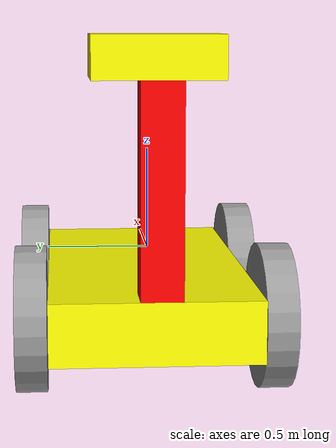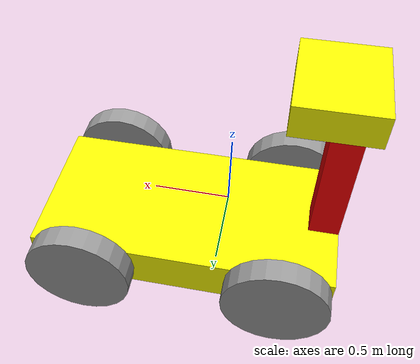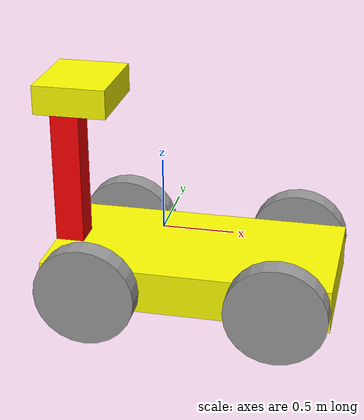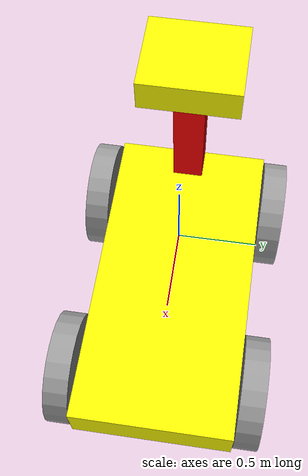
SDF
<?xml version='1.0'?>
<sdf version='1.6'>
  <model name='nonamefinal'>
    <link name='link_0'>
      <inertial>
        <mass>1</mass>
        <inertia>
          <ixx>0.166667</ixx>
          <ixy>0</ixy>
          <ixz>0</ixz>
          <iyy>0.166667</iyy>
          <iyz>0</iyz>
          <izz>0.166667</izz>
        </inertia>
        <pose frame=''>0 0 0 0 -0 0</pose>
      </inertial>
      <pose frame=''>0.242858 0.002856 -0.271429 0 -0 0</pose>
      <gravity>1</gravity>
      <self_collide>0</self_collide>
      <kinematic>0</kinematic>
      <enable_wind>0</enable_wind>
      <visual name='visual'>
        <pose frame=''>0 0 0 0 -0 0</pose>
        <geometry>
          <box>
            <size>2 1 0.3</size>
          </box>
        </geometry>
        <material>
          <lighting>1</lighting>
          <script>
            <uri>file://media/materials/scripts/gazebo.material</uri>
            <name>Gazebo/Grey</name>
          </script>
          <shader type='vertex'>
            <normal_map>__default__</normal_map>
          </shader>
          <ambient>1 1 0 1</ambient>
          <diffuse>1 1 0 1</diffuse>
          <specular>0.01 0.01 0.01 1</specular>
          <emissive>0 0 0 1</emissive>
        </material>
        <transparency>0</transparency>
        <cast_shadows>1</cast_shadows>
      </visual>
      <collision name='collision'>
        <laser_retro>0</laser_retro>
        <max_contacts>10</max_contacts>
        <pose frame=''>0 0 0 0 -0 0</pose>
        <geometry>
          <box>
            <size>2 1 0.3</size>
          </box>
        </geometry>
        <surface>
          <friction>
            <ode>
              <mu>1</mu>
              <mu2>1</mu2>
              <fdir1>0 0 0</fdir1>
              <slip1>0</slip1>
              <slip2>0</slip2>
            </ode>
            <torsional>
              <coefficient>1</coefficient>
              <patch_radius>0</patch_radius>
              <surface_radius>0</surface_radius>
              <use_patch_radius>1</use_patch_radius>
              <ode>
                <slip>0</slip>
              </ode>
            </torsional>
          </friction>
          <bounce>
            <restitution_coefficient>0</restitution_coefficient>
            <threshold>1e+06</threshold>
          </bounce>
          <contact>
            <collide_without_contact>0</collide_without_contact>
            <collide_without_contact_bitmask>1</collide_without_contact_bitmask>
            <collide_bitmask>1</collide_bitmask>
            <ode>
              <soft_cfm>0</soft_cfm>
              <soft_erp>0.2</soft_erp>
              <kp>1e+13</kp>
              <kd>1</kd>
              <max_vel>0.01</max_vel>
              <min_depth>0</min_depth>
            </ode>
            <bullet>
              <split_impulse>1</split_impulse>
              <split_impulse_penetration_threshold>-0.01</split_impulse_penetration_threshold>
              <soft_cfm>0</soft_cfm>
              <soft_erp>0.2</soft_erp>
              <kp>1e+13</kp>
              <kd>1</kd>
            </bullet>
          </contact>
        </surface>
      </collision>
    </link>
    <link name='link_1'>
      <inertial>
        <mass>1</mass>
        <inertia>
          <ixx>0.145833</ixx>
          <ixy>0</ixy>
          <ixz>0</ixz>
          <iyy>0.145833</iyy>
          <iyz>0</iyz>
          <izz>0.125</izz>
        </inertia>
        <pose frame=''>0 0 0 0 -0 0</pose>
      </inertial>
      <pose frame=''>0.892854 0.58139 -0.271429 0 -0 0</pose>
      <gravity>1</gravity>
      <self_collide>0</self_collide>
      <kinematic>0</kinematic>
      <enable_wind>0</enable_wind>
      <visual name='visual'>
        <pose frame=''>0 0 0 1.5707 -0 0</pose>
        <geometry>
          <cylinder>
            <radius>0.35</radius>
            <length>0.15</length>
          </cylinder>
        </geometry>
        <material>
          <lighting>1</lighting>
          <script>
            <uri>file://media/materials/scripts/gazebo.material</uri>
            <name>Gazebo/Grey</name>
          </script>
          <shader type='vertex'>
            <normal_map>__default__</normal_map>
          </shader>
          <ambient>0 0 0 1</ambient>
          <diffuse>0.7 0.7 0.7 1</diffuse>
          <specular>0.01 0.01 0.01 1</specular>
          <emissive>0 0 0 1</emissive>
        </material>
        <transparency>0</transparency>
        <cast_shadows>1</cast_shadows>
      </visual>
      <collision name='collision'>
        <laser_retro>0</laser_retro>
        <max_contacts>10</max_contacts>
        <pose frame=''>0 0 0 1.5607 -0 0</pose>
        <geometry>
          <cylinder>
            <radius>0.35</radius>
            <length>0.15</length>
          </cylinder>
        </geometry>
        <surface>
          <friction>
            <ode>
              <mu>1</mu>
              <mu2>1</mu2>
              <fdir1>0 0 0</fdir1>
              <slip1>0</slip1>
              <slip2>0</slip2>
            </ode>
            <torsional>
              <coefficient>1</coefficient>
              <patch_radius>0</patch_radius>
              <surface_radius>0</surface_radius>
              <use_patch_radius>1</use_patch_radius>
              <ode>
                <slip>0</slip>
              </ode>
            </torsional>
          </friction>
          <bounce>
            <restitution_coefficient>0</restitution_coefficient>
            <threshold>1e+06</threshold>
          </bounce>
          <contact>
            <collide_without_contact>0</collide_without_contact>
            <collide_without_contact_bitmask>1</collide_without_contact_bitmask>
            <collide_bitmask>1</collide_bitmask>
            <ode>
              <soft_cfm>0</soft_cfm>
              <soft_erp>0.2</soft_erp>
              <kp>1e+13</kp>
              <kd>1</kd>
              <max_vel>0.01</max_vel>
              <min_depth>0</min_depth>
            </ode>
            <bullet>
              <split_impulse>1</split_impulse>
              <split_impulse_penetration_threshold>-0.01</split_impulse_penetration_threshold>
              <soft_cfm>0</soft_cfm>
              <soft_erp>0.2</soft_erp>
              <kp>1e+13</kp>
              <kd>1</kd>
            </bullet>
          </contact>
        </surface>
      </collision>
    </link>
    <link name='link_1_clone'>
      <inertial>
        <mass>1</mass>
        <inertia>
          <ixx>0.145833</ixx>
          <ixy>0</ixy>
          <ixz>0</ixz>
          <iyy>0.145833</iyy>
          <iyz>0</iyz>
          <izz>0.125</izz>
        </inertia>
        <pose frame=''>0 0 0 0 -0 0</pose>
      </inertial>
      <pose frame=''>-0.407142 -0.575673 -0.271429 0 -0 0</pose>
      <gravity>1</gravity>
      <self_collide>0</self_collide>
      <kinematic>0</kinematic>
      <enable_wind>0</enable_wind>
      <visual name='visual'>
        <pose frame=''>0 0 0 1.5707 -0 0</pose>
        <geometry>
          <cylinder>
            <radius>0.35</radius>
            <length>0.15</length>
          </cylinder>
        </geometry>
        <material>
          <lighting>1</lighting>
          <script>
            <uri>file://media/materials/scripts/gazebo.material</uri>
            <name>Gazebo/Grey</name>
          </script>
          <shader type='vertex'>
            <normal_map>__default__</normal_map>
          </shader>
          <ambient>0 0 0 1</ambient>
          <diffuse>0.7 0.7 0.7 1</diffuse>
          <specular>0.01 0.01 0.01 1</specular>
          <emissive>0 0 0 1</emissive>
        </material>
        <transparency>0</transparency>
        <cast_shadows>1</cast_shadows>
      </visual>
      <collision name='collision'>
        <laser_retro>0</laser_retro>
        <max_contacts>10</max_contacts>
        <pose frame=''>0 0 0 1.5607 -0 0</pose>
        <geometry>
          <cylinder>
            <radius>0.35</radius>
            <length>0.15</length>
          </cylinder>
        </geometry>
        <surface>
          <friction>
            <ode>
              <mu>1</mu>
              <mu2>1</mu2>
              <fdir1>0 0 0</fdir1>
              <slip1>0</slip1>
              <slip2>0</slip2>
            </ode>
            <torsional>
              <coefficient>1</coefficient>
              <patch_radius>0</patch_radius>
              <surface_radius>0</surface_radius>
              <use_patch_radius>1</use_patch_radius>
              <ode>
                <slip>0</slip>
              </ode>
            </torsional>
          </friction>
          <bounce>
            <restitution_coefficient>0</restitution_coefficient>
            <threshold>1e+06</threshold>
          </bounce>
          <contact>
            <collide_without_contact>0</collide_without_contact>
            <collide_without_contact_bitmask>1</collide_without_contact_bitmask>
            <collide_bitmask>1</collide_bitmask>
            <ode>
              <soft_cfm>0</soft_cfm>
              <soft_erp>0.2</soft_erp>
              <kp>1e+13</kp>
              <kd>1</kd>
              <max_vel>0.01</max_vel>
              <min_depth>0</min_depth>
            </ode>
            <bullet>
              <split_impulse>1</split_impulse>
              <split_impulse_penetration_threshold>-0.01</split_impulse_penetration_threshold>
              <soft_cfm>0</soft_cfm>
              <soft_erp>0.2</soft_erp>
              <kp>1e+13</kp>
              <kd>1</kd>
            </bullet>
          </contact>
        </surface>
      </collision>
    </link>
    <link name='link_1_clone_0'>
      <inertial>
        <mass>1</mass>
        <inertia>
          <ixx>0.145833</ixx>
          <ixy>0</ixy>
          <ixz>0</ixz>
          <iyy>0.145833</iyy>
          <iyz>0</iyz>
          <izz>0.125</izz>
        </inertia>
        <pose frame=''>0 0 0 0 -0 0</pose>
      </inertial>
      <pose frame=''>-0.407142 0.581387 -0.271429 0 -0 0</pose>
      <gravity>1</gravity>
      <self_collide>0</self_collide>
      <kinematic>0</kinematic>
      <enable_wind>0</enable_wind>
      <visual name='visual'>
        <pose frame=''>0 0 0 1.5707 -0 0</pose>
        <geometry>
          <cylinder>
            <radius>0.35</radius>
            <length>0.15</length>
          </cylinder>
        </geometry>
        <material>
          <lighting>1</lighting>
          <script>
            <uri>file://media/materials/scripts/gazebo.material</uri>
            <name>Gazebo/Grey</name>
          </script>
          <shader type='vertex'>
            <normal_map>__default__</normal_map>
          </shader>
          <ambient>0 0 0 1</ambient>
          <diffuse>0.7 0.7 0.7 1</diffuse>
          <specular>0.01 0.01 0.01 1</specular>
          <emissive>0 0 0 1</emissive>
        </material>
        <transparency>0</transparency>
        <cast_shadows>1</cast_shadows>
      </visual>
      <collision name='collision'>
        <laser_retro>0</laser_retro>
        <max_contacts>10</max_contacts>
        <pose frame=''>0 0 0 1.5607 -0 0</pose>
        <geometry>
          <cylinder>
            <radius>0.35</radius>
            <length>0.15</length>
          </cylinder>
        </geometry>
        <surface>
          <friction>
            <ode>
              <mu>1</mu>
              <mu2>1</mu2>
              <fdir1>0 0 0</fdir1>
              <slip1>0</slip1>
              <slip2>0</slip2>
            </ode>
            <torsional>
              <coefficient>1</coefficient>
              <patch_radius>0</patch_radius>
              <surface_radius>0</surface_radius>
              <use_patch_radius>1</use_patch_radius>
              <ode>
                <slip>0</slip>
              </ode>
            </torsional>
          </friction>
          <bounce>
            <restitution_coefficient>0</restitution_coefficient>
            <threshold>1e+06</threshold>
          </bounce>
          <contact>
            <collide_without_contact>0</collide_without_contact>
            <collide_without_contact_bitmask>1</collide_without_contact_bitmask>
            <collide_bitmask>1</collide_bitmask>
            <ode>
              <soft_cfm>0</soft_cfm>
              <soft_erp>0.2</soft_erp>
              <kp>1e+13</kp>
              <kd>1</kd>
              <max_vel>0.01</max_vel>
              <min_depth>0</min_depth>
            </ode>
            <bullet>
              <split_impulse>1</split_impulse>
              <split_impulse_penetration_threshold>-0.01</split_impulse_penetration_threshold>
              <soft_cfm>0</soft_cfm>
              <soft_erp>0.2</soft_erp>
              <kp>1e+13</kp>
              <kd>1</kd>
            </bullet>
          </contact>
        </surface>
      </collision>
    </link>
    <link name='link_1_clone_1'>
      <inertial>
        <mass>1</mass>
        <inertia>
          <ixx>0.145833</ixx>
          <ixy>0</ixy>
          <ixz>0</ixz>
          <iyy>0.145833</iyy>
          <iyz>0</iyz>
          <izz>0.125</izz>
        </inertia>
        <pose frame=''>0 0 0 0 -0 0</pose>
      </inertial>
      <pose frame=''>0.892854 -0.575675 -0.271429 0 -0 0</pose>
      <gravity>1</gravity>
      <self_collide>0</self_collide>
      <kinematic>0</kinematic>
      <enable_wind>0</enable_wind>
      <visual name='visual'>
        <pose frame=''>0 0 0 1.5707 -0 0</pose>
        <geometry>
          <cylinder>
            <radius>0.35</radius>
            <length>0.15</length>
          </cylinder>
        </geometry>
        <material>
          <lighting>1</lighting>
          <script>
            <uri>file://media/materials/scripts/gazebo.material</uri>
            <name>Gazebo/Grey</name>
          </script>
          <shader type='vertex'>
            <normal_map>__default__</normal_map>
          </shader>
          <ambient>0 0 0 1</ambient>
          <diffuse>0.7 0.7 0.7 1</diffuse>
          <specular>0.01 0.01 0.01 1</specular>
          <emissive>0 0 0 1</emissive>
        </material>
        <transparency>0</transparency>
        <cast_shadows>1</cast_shadows>
      </visual>
      <collision name='collision'>
        <laser_retro>0</laser_retro>
        <max_contacts>10</max_contacts>
        <pose frame=''>0 0 0 1.5607 -0 0</pose>
        <geometry>
          <cylinder>
            <radius>0.35</radius>
            <length>0.15</length>
          </cylinder>
        </geometry>
        <surface>
          <friction>
            <ode>
              <mu>1</mu>
              <mu2>1</mu2>
              <fdir1>0 0 0</fdir1>
              <slip1>0</slip1>
              <slip2>0</slip2>
            </ode>
            <torsional>
              <coefficient>1</coefficient>
              <patch_radius>0</patch_radius>
              <surface_radius>0</surface_radius>
              <use_patch_radius>1</use_patch_radius>
              <ode>
                <slip>0</slip>
              </ode>
            </torsional>
          </friction>
          <bounce>
            <restitution_coefficient>0</restitution_coefficient>
            <threshold>1e+06</threshold>
          </bounce>
          <contact>
            <collide_without_contact>0</collide_without_contact>
            <collide_without_contact_bitmask>1</collide_without_contact_bitmask>
            <collide_bitmask>1</collide_bitmask>
            <ode>
              <soft_cfm>0</soft_cfm>
              <soft_erp>0.2</soft_erp>
              <kp>1e+13</kp>
              <kd>1</kd>
              <max_vel>0.01</max_vel>
              <min_depth>0</min_depth>
            </ode>
            <bullet>
              <split_impulse>1</split_impulse>
              <split_impulse_penetration_threshold>-0.01</split_impulse_penetration_threshold>
              <soft_cfm>0</soft_cfm>
              <soft_erp>0.2</soft_erp>
              <kp>1e+13</kp>
              <kd>1</kd>
            </bullet>
          </contact>
        </surface>
      </collision>
    </link>
    <link name='link_2'>
      <inertial>
        <mass>1</mass>
        <inertia>
          <ixx>0.166667</ixx>
          <ixy>0</ixy>
          <ixz>0</ixz>
          <iyy>0.166667</iyy>
          <iyz>0</iyz>
          <izz>0.166667</izz>
        </inertia>
        <pose frame=''>0 0 0 0 -0 0</pose>
      </inertial>
      <pose frame=''>-0.657142 -0.017144 0.378571 0 -0 0</pose>
      <gravity>1</gravity>
      <self_collide>0</self_collide>
      <kinematic>0</kinematic>
      <enable_wind>0</enable_wind>
      <visual name='visual'>
        <pose frame=''>0 0 0 0 -0 0</pose>
        <geometry>
          <box>
            <size>0.2 0.2 1</size>
          </box>
        </geometry>
        <material>
          <lighting>1</lighting>
          <script>
            <uri>file://media/materials/scripts/gazebo.material</uri>
            <name>Gazebo/Grey</name>
          </script>
          <shader type='vertex'>
            <normal_map>__default__</normal_map>
          </shader>
          <ambient>1 0 0 1</ambient>
          <diffuse>0.7 0.7 0.7 1</diffuse>
          <specular>0.01 0.01 0.01 1</specular>
          <emissive>0 0 0 1</emissive>
        </material>
        <transparency>0</transparency>
        <cast_shadows>1</cast_shadows>
      </visual>
      <collision name='collision'>
        <laser_retro>0</laser_retro>
        <max_contacts>10</max_contacts>
        <pose frame=''>0 0 0 0 -0 0</pose>
        <geometry>
          <box>
            <size>0.2 0.2 1</size>
          </box>
        </geometry>
        <surface>
          <friction>
            <ode>
              <mu>1</mu>
              <mu2>1</mu2>
              <fdir1>0 0 0</fdir1>
              <slip1>0</slip1>
              <slip2>0</slip2>
            </ode>
            <torsional>
              <coefficient>1</coefficient>
              <patch_radius>0</patch_radius>
              <surface_radius>0</surface_radius>
              <use_patch_radius>1</use_patch_radius>
              <ode>
                <slip>0</slip>
              </ode>
            </torsional>
          </friction>
          <bounce>
            <restitution_coefficient>0</restitution_coefficient>
            <threshold>1e+06</threshold>
          </bounce>
          <contact>
            <collide_without_contact>0</collide_without_contact>
            <collide_without_contact_bitmask>1</collide_without_contact_bitmask>
            <collide_bitmask>1</collide_bitmask>
            <ode>
              <soft_cfm>0</soft_cfm>
              <soft_erp>0.2</soft_erp>
              <kp>1e+13</kp>
              <kd>1</kd>
              <max_vel>0.01</max_vel>
              <min_depth>0</min_depth>
            </ode>
            <bullet>
              <split_impulse>1</split_impulse>
              <split_impulse_penetration_threshold>-0.01</split_impulse_penetration_threshold>
              <soft_cfm>0</soft_cfm>
              <soft_erp>0.2</soft_erp>
              <kp>1e+13</kp>
              <kd>1</kd>
            </bullet>
          </contact>
        </surface>
      </collision>
    </link>
    <link name='link_3'>
      <inertial>
        <mass>1</mass>
        <inertia>
          <ixx>0.166667</ixx>
          <ixy>0</ixy>
          <ixz>0</ixz>
          <iyy>0.166667</iyy>
          <iyz>0</iyz>
          <izz>0.166667</izz>
        </inertia>
        <pose frame=''>0 0 0 0 -0 0</pose>
      </inertial>
      <pose frame=''>-0.557142 0.002855 0.978571 0 -0 0</pose>
      <gravity>1</gravity>
      <self_collide>0</self_collide>
      <kinematic>0</kinematic>
      <enable_wind>0</enable_wind>
      <visual name='visual'>
        <pose frame=''>0 0 0 0 -0 0</pose>
        <geometry>
          <box>
            <size>0.5 0.6 0.2</size>
          </box>
        </geometry>
        <material>
          <lighting>1</lighting>
          <script>
            <uri>file://media/materials/scripts/gazebo.material</uri>
            <name>Gazebo/Grey</name>
          </script>
          <shader type='vertex'>
            <normal_map>__default__</normal_map>
          </shader>
          <ambient>1 1 0 1</ambient>
          <diffuse>0.7 0.7 0.7 1</diffuse>
          <specular>0.01 0.01 0.01 1</specular>
          <emissive>0 0 0 1</emissive>
        </material>
        <transparency>0</transparency>
        <cast_shadows>1</cast_shadows>
      </visual>
      <collision name='collision'>
        <laser_retro>0</laser_retro>
        <max_contacts>10</max_contacts>
        <pose frame=''>0 0 0 0 -0 0</pose>
        <geometry>
          <box>
            <size>0.5 0.6 0.2</size>
          </box>
        </geometry>
        <surface>
          <friction>
            <ode>
              <mu>1</mu>
              <mu2>1</mu2>
              <fdir1>0 0 0</fdir1>
              <slip1>0</slip1>
              <slip2>0</slip2>
            </ode>
            <torsional>
              <coefficient>1</coefficient>
              <patch_radius>0</patch_radius>
              <surface_radius>0</surface_radius>
              <use_patch_radius>1</use_patch_radius>
              <ode>
                <slip>0</slip>
              </ode>
            </torsional>
          </friction>
          <bounce>
            <restitution_coefficient>0</restitution_coefficient>
            <threshold>1e+06</threshold>
          </bounce>
          <contact>
            <collide_without_contact>0</collide_without_contact>
            <collide_without_contact_bitmask>1</collide_without_contact_bitmask>
            <collide_bitmask>1</collide_bitmask>
            <ode>
              <soft_cfm>0</soft_cfm>
              <soft_erp>0.2</soft_erp>
              <kp>1e+13</kp>
              <kd>1</kd>
              <max_vel>0.01</max_vel>
              <min_depth>0</min_depth>
            </ode>
            <bullet>
              <split_impulse>1</split_impulse>
              <split_impulse_penetration_threshold>-0.01</split_impulse_penetration_threshold>
              <soft_cfm>0</soft_cfm>
              <soft_erp>0.2</soft_erp>
              <kp>1e+13</kp>
              <kd>1</kd>
            </bullet>
          </contact>
        </surface>
      </collision>
    </link>
    <joint name='link_0_JOINT_1' type='revolute'>
      <parent>link_0</parent>
      <child>link_1</child>
      <pose frame=''>0 0 0 0 -0 0</pose>
      <axis>
        <xyz>-0 -1 -0</xyz>
        <use_parent_model_frame>0</use_parent_model_frame>
        <limit>
          <lower>-1.79769e+308</lower>
          <upper>1.79769e+308</upper>
          <effort>-1</effort>
          <velocity>-1</velocity>
        </limit>
        <dynamics>
          <spring_reference>0</spring_reference>
          <spring_stiffness>0</spring_stiffness>
          <damping>0</damping>
          <friction>0</friction>
        </dynamics>
      </axis>
      <physics>
        <ode>
          <limit>
            <cfm>0</cfm>
            <erp>0.2</erp>
          </limit>
          <suspension>
            <cfm>0</cfm>
            <erp>0.2</erp>
          </suspension>
        </ode>
      </physics>
    </joint>
    <joint name='link_0_JOINT_2' type='revolute'>
      <parent>link_0</parent>
      <child>link_1_clone</child>
      <pose frame=''>0 0 0 0 -0 0</pose>
      <axis>
        <xyz>-0 -1 -0</xyz>
        <use_parent_model_frame>0</use_parent_model_frame>
        <limit>
          <lower>-1.79769e+308</lower>
          <upper>1.79769e+308</upper>
          <effort>-1</effort>
          <velocity>-1</velocity>
        </limit>
        <dynamics>
          <spring_reference>0</spring_reference>
          <spring_stiffness>0</spring_stiffness>
          <damping>0</damping>
          <friction>0</friction>
        </dynamics>
      </axis>
      <physics>
        <ode>
          <limit>
            <cfm>0</cfm>
            <erp>0.2</erp>
          </limit>
          <suspension>
            <cfm>0</cfm>
            <erp>0.2</erp>
          </suspension>
        </ode>
      </physics>
    </joint>
    <joint name='link_0_JOINT_4' type='revolute'>
      <parent>link_0</parent>
      <child>link_1_clone_0</child>
      <pose frame=''>0 0 0 0 -0 0</pose>
      <axis>
        <xyz>-0 -1 -0</xyz>
        <use_parent_model_frame>0</use_parent_model_frame>
        <limit>
          <lower>-1.79769e+308</lower>
          <upper>1.79769e+308</upper>
          <effort>-1</effort>
          <velocity>-1</velocity>
        </limit>
        <dynamics>
          <spring_reference>0</spring_reference>
          <spring_stiffness>0</spring_stiffness>
          <damping>0</damping>
          <friction>0</friction>
        </dynamics>
      </axis>
      <physics>
        <ode>
          <limit>
            <cfm>0</cfm>
            <erp>0.2</erp>
          </limit>
          <suspension>
            <cfm>0</cfm>
            <erp>0.2</erp>
          </suspension>
        </ode>
      </physics>
    </joint>
    <joint name='link_0_JOINT_5' type='revolute'>
      <parent>link_0</parent>
      <child>link_1_clone_1</child>
      <pose frame=''>0 0 0 0 -0 0</pose>
      <axis>
        <xyz>-0 -1 -0</xyz>
        <use_parent_model_frame>0</use_parent_model_frame>
        <limit>
          <lower>-1.79769e+308</lower>
          <upper>1.79769e+308</upper>
          <effort>-1</effort>
          <velocity>-1</velocity>
        </limit>
        <dynamics>
          <spring_reference>0</spring_reference>
          <spring_stiffness>0</spring_stiffness>
          <damping>0</damping>
          <friction>0</friction>
        </dynamics>
      </axis>
      <physics>
        <ode>
          <limit>
            <cfm>0</cfm>
            <erp>0.2</erp>
          </limit>
          <suspension>
            <cfm>0</cfm>
            <erp>0.2</erp>
          </suspension>
        </ode>
      </physics>
    </joint>
    <joint name='link_0_JOINT_7' type='fixed'>
      <parent>link_0</parent>
      <child>link_2</child>
      <pose frame=''>0 0 0 0 -0 0</pose>
      <physics>
        <ode>
          <limit>
            <cfm>0</cfm>
            <erp>0.2</erp>
          </limit>
          <suspension>
            <cfm>0</cfm>
            <erp>0.2</erp>
          </suspension>
        </ode>
      </physics>
    </joint>
    <joint name='link_2_JOINT_8' type='revolute'>
      <parent>link_2</parent>
      <child>link_3</child>
      <pose frame=''>0 0 0 0 -0 0</pose>
      <axis>
        <xyz>0 0 1</xyz>
        <use_parent_model_frame>0</use_parent_model_frame>
        <limit>
          <lower>-1.79769e+308</lower>
          <upper>1.79769e+308</upper>
          <effort>-1</effort>
          <velocity>-1</velocity>
        </limit>
        <dynamics>
          <spring_reference>0</spring_reference>
          <spring_stiffness>0</spring_stiffness>
          <damping>0</damping>
          <friction>0</friction>
        </dynamics>
      </axis>
      <physics>
        <ode>
          <limit>
            <cfm>0</cfm>
            <erp>0.2</erp>
          </limit>
          <suspension>
            <cfm>0</cfm>
            <erp>0.2</erp>
          </suspension>
        </ode>
      </physics>
    </joint>
    <static>0</static>
    <allow_auto_disable>1</allow_auto_disable>
  </model>
</sdf>
